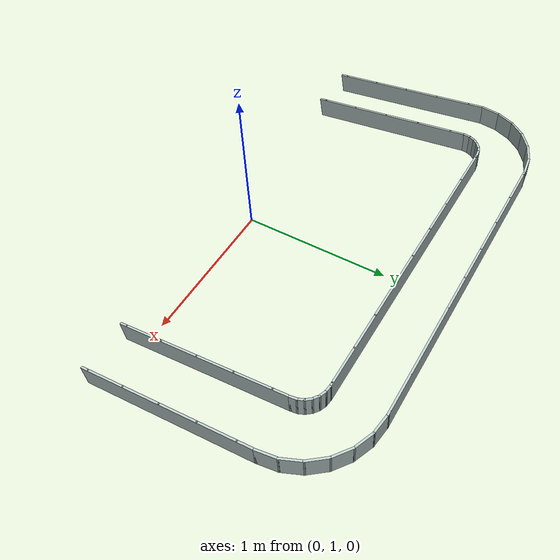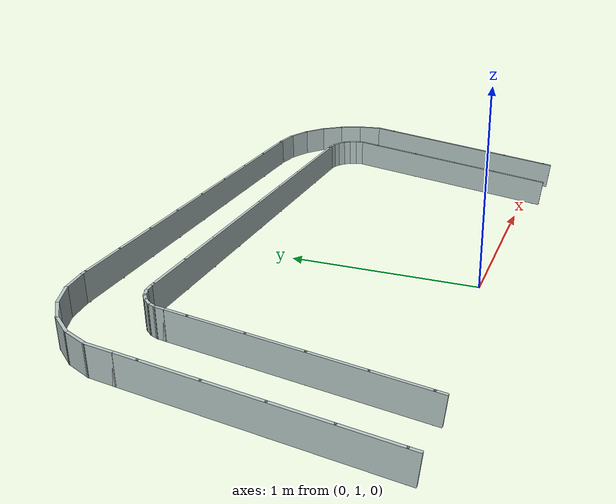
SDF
<sdf version="1.6">
 <world name="sandbox">
  <include><uri>model://sun</uri></include>
  <model name="upper_road_barriers">
   <static>true</static>
   <link name="body">
    <collision name="collision_1">
     <pose>-1.180000 1.452500 0.160960 0.000000 -0.115707 1.570796</pose>
     <geometry><box><size>1.157000 0.014000 0.145000</size></box></geometry>
    </collision>
    <visual name="visual_1">
     <pose>-1.180000 1.452500 0.160960 0.000000 -0.115707 1.570796</pose>
     <geometry><box><size>1.157000 0.014000 0.145000</size></box></geometry>
     <material><ambient>0.72 0.79 0.78 1</ambient><diffuse>0.72 0.79 0.78 1</diffuse></material>
    </visual>
    <visual name="visual_3">
     <pose>-1.180000 0.920000 0.098570 0.000000 0.000000 0.000000</pose>
     <geometry><cylinder><radius>0.005000</radius><length>0.150000</length></cylinder></geometry>
     <material><ambient>0.48 0.54 0.55 1</ambient><diffuse>0.48 0.54 0.55 1</diffuse></material>
    </visual>
    <visual name="visual_4">
     <pose>-1.180000 1.170000 0.127626 0.000000 0.000000 0.000000</pose>
     <geometry><cylinder><radius>0.005000</radius><length>0.150000</length></cylinder></geometry>
     <material><ambient>0.48 0.54 0.55 1</ambient><diffuse>0.48 0.54 0.55 1</diffuse></material>
    </visual>
    <visual name="visual_5">
     <pose>-1.180000 1.420000 0.156683 0.000000 0.000000 0.000000</pose>
     <geometry><cylinder><radius>0.005000</radius><length>0.150000</length></cylinder></geometry>
     <material><ambient>0.48 0.54 0.55 1</ambient><diffuse>0.48 0.54 0.55 1</diffuse></material>
    </visual>
    <visual name="visual_6">
     <pose>-1.180000 1.670000 0.185740 0.000000 0.000000 0.000000</pose>
     <geometry><cylinder><radius>0.005000</radius><length>0.150000</length></cylinder></geometry>
     <material><ambient>0.48 0.54 0.55 1</ambient><diffuse>0.48 0.54 0.55 1</diffuse></material>
    </visual>
    <visual name="visual_7">
     <pose>-1.180000 1.920000 0.214796 0.000000 0.000000 0.000000</pose>
     <geometry><cylinder><radius>0.005000</radius><length>0.150000</length></cylinder></geometry>
     <material><ambient>0.48 0.54 0.55 1</ambient><diffuse>0.48 0.54 0.55 1</diffuse></material>
    </visual>
    <collision name="collision_8">
     <pose>-1.520000 1.452500 0.160960 0.000000 -0.115707 1.570796</pose>
     <geometry><box><size>1.157000 0.014000 0.145000</size></box></geometry>
    </collision>
    <visual name="visual_8">
     <pose>-1.520000 1.452500 0.160960 0.000000 -0.115707 1.570796</pose>
     <geometry><box><size>1.157000 0.014000 0.145000</size></box></geometry>
     <material><ambient>0.72 0.79 0.78 1</ambient><diffuse>0.72 0.79 0.78 1</diffuse></material>
    </visual>
    <visual name="visual_10">
     <pose>-1.520000 0.920000 0.098570 0.000000 0.000000 0.000000</pose>
     <geometry><cylinder><radius>0.005000</radius><length>0.150000</length></cylinder></geometry>
     <material><ambient>0.48 0.54 0.55 1</ambient><diffuse>0.48 0.54 0.55 1</diffuse></material>
    </visual>
    <visual name="visual_11">
     <pose>-1.520000 1.170000 0.127626 0.000000 0.000000 0.000000</pose>
     <geometry><cylinder><radius>0.005000</radius><length>0.150000</length></cylinder></geometry>
     <material><ambient>0.48 0.54 0.55 1</ambient><diffuse>0.48 0.54 0.55 1</diffuse></material>
    </visual>
    <visual name="visual_12">
     <pose>-1.520000 1.420000 0.156683 0.000000 0.000000 0.000000</pose>
     <geometry><cylinder><radius>0.005000</radius><length>0.150000</length></cylinder></geometry>
     <material><ambient>0.48 0.54 0.55 1</ambient><diffuse>0.48 0.54 0.55 1</diffuse></material>
    </visual>
    <visual name="visual_13">
     <pose>-1.520000 1.670000 0.185740 0.000000 0.000000 0.000000</pose>
     <geometry><cylinder><radius>0.005000</radius><length>0.150000</length></cylinder></geometry>
     <material><ambient>0.48 0.54 0.55 1</ambient><diffuse>0.48 0.54 0.55 1</diffuse></material>
    </visual>
    <visual name="visual_14">
     <pose>-1.520000 1.920000 0.214796 0.000000 0.000000 0.000000</pose>
     <geometry><cylinder><radius>0.005000</radius><length>0.150000</length></cylinder></geometry>
     <material><ambient>0.48 0.54 0.55 1</ambient><diffuse>0.48 0.54 0.55 1</diffuse></material>
    </visual>
    <collision name="collision_15">
     <pose>1.180000 1.452500 0.160960 0.000000 -0.115707 1.570796</pose>
     <geometry><box><size>1.157000 0.014000 0.145000</size></box></geometry>
    </collision>
    <visual name="visual_15">
     <pose>1.180000 1.452500 0.160960 0.000000 -0.115707 1.570796</pose>
     <geometry><box><size>1.157000 0.014000 0.145000</size></box></geometry>
     <material><ambient>0.72 0.79 0.78 1</ambient><diffuse>0.72 0.79 0.78 1</diffuse></material>
    </visual>
    <visual name="visual_17">
     <pose>1.180000 0.920000 0.098570 0.000000 0.000000 0.000000</pose>
     <geometry><cylinder><radius>0.005000</radius><length>0.150000</length></cylinder></geometry>
     <material><ambient>0.48 0.54 0.55 1</ambient><diffuse>0.48 0.54 0.55 1</diffuse></material>
    </visual>
    <visual name="visual_18">
     <pose>1.180000 1.170000 0.127626 0.000000 0.000000 0.000000</pose>
     <geometry><cylinder><radius>0.005000</radius><length>0.150000</length></cylinder></geometry>
     <material><ambient>0.48 0.54 0.55 1</ambient><diffuse>0.48 0.54 0.55 1</diffuse></material>
    </visual>
    <visual name="visual_19">
     <pose>1.180000 1.420000 0.156683 0.000000 0.000000 0.000000</pose>
     <geometry><cylinder><radius>0.005000</radius><length>0.150000</length></cylinder></geometry>
     <material><ambient>0.48 0.54 0.55 1</ambient><diffuse>0.48 0.54 0.55 1</diffuse></material>
    </visual>
    <visual name="visual_20">
     <pose>1.180000 1.670000 0.185740 0.000000 0.000000 0.000000</pose>
     <geometry><cylinder><radius>0.005000</radius><length>0.150000</length></cylinder></geometry>
     <material><ambient>0.48 0.54 0.55 1</ambient><diffuse>0.48 0.54 0.55 1</diffuse></material>
    </visual>
    <visual name="visual_21">
     <pose>1.180000 1.920000 0.214796 0.000000 0.000000 0.000000</pose>
     <geometry><cylinder><radius>0.005000</radius><length>0.150000</length></cylinder></geometry>
     <material><ambient>0.48 0.54 0.55 1</ambient><diffuse>0.48 0.54 0.55 1</diffuse></material>
    </visual>
    <collision name="collision_22">
     <pose>1.520000 1.452500 0.160960 0.000000 -0.115707 1.570796</pose>
     <geometry><box><size>1.157000 0.014000 0.145000</size></box></geometry>
    </collision>
    <visual name="visual_22">
     <pose>1.520000 1.452500 0.160960 0.000000 -0.115707 1.570796</pose>
     <geometry><box><size>1.157000 0.014000 0.145000</size></box></geometry>
     <material><ambient>0.72 0.79 0.78 1</ambient><diffuse>0.72 0.79 0.78 1</diffuse></material>
    </visual>
    <visual name="visual_24">
     <pose>1.520000 0.920000 0.098570 0.000000 0.000000 0.000000</pose>
     <geometry><cylinder><radius>0.005000</radius><length>0.150000</length></cylinder></geometry>
     <material><ambient>0.48 0.54 0.55 1</ambient><diffuse>0.48 0.54 0.55 1</diffuse></material>
    </visual>
    <visual name="visual_25">
     <pose>1.520000 1.170000 0.127626 0.000000 0.000000 0.000000</pose>
     <geometry><cylinder><radius>0.005000</radius><length>0.150000</length></cylinder></geometry>
     <material><ambient>0.48 0.54 0.55 1</ambient><diffuse>0.48 0.54 0.55 1</diffuse></material>
    </visual>
    <visual name="visual_26">
     <pose>1.520000 1.420000 0.156683 0.000000 0.000000 0.000000</pose>
     <geometry><cylinder><radius>0.005000</radius><length>0.150000</length></cylinder></geometry>
     <material><ambient>0.48 0.54 0.55 1</ambient><diffuse>0.48 0.54 0.55 1</diffuse></material>
    </visual>
    <visual name="visual_27">
     <pose>1.520000 1.670000 0.185740 0.000000 0.000000 0.000000</pose>
     <geometry><cylinder><radius>0.005000</radius><length>0.150000</length></cylinder></geometry>
     <material><ambient>0.48 0.54 0.55 1</ambient><diffuse>0.48 0.54 0.55 1</diffuse></material>
    </visual>
    <visual name="visual_28">
     <pose>1.520000 1.920000 0.214796 0.000000 0.000000 0.000000</pose>
     <geometry><cylinder><radius>0.005000</radius><length>0.150000</length></cylinder></geometry>
     <material><ambient>0.48 0.54 0.55 1</ambient><diffuse>0.48 0.54 0.55 1</diffuse></material>
    </visual>
    <collision name="collision_29">
     <pose>1.177359 2.045058 0.227500 0.000000 -0.000000 1.701696</pose>
     <geometry><box><size>0.052463 0.014000 0.145000</size></box></geometry>
    </collision>
    <visual name="visual_29">
     <pose>1.177359 2.045058 0.227500 0.000000 -0.000000 1.701696</pose>
     <geometry><box><size>0.052463 0.014000 0.145000</size></box></geometry>
     <material><ambient>0.72 0.79 0.78 1</ambient><diffuse>0.72 0.79 0.78 1</diffuse></material>
    </visual>
    <collision name="collision_31">
     <pose>1.166976 2.083808 0.227500 0.000000 -0.000000 1.963495</pose>
     <geometry><box><size>0.052463 0.014000 0.145000</size></box></geometry>
    </collision>
    <visual name="visual_31">
     <pose>1.166976 2.083808 0.227500 0.000000 -0.000000 1.963495</pose>
     <geometry><box><size>0.052463 0.014000 0.145000</size></box></geometry>
     <material><ambient>0.72 0.79 0.78 1</ambient><diffuse>0.72 0.79 0.78 1</diffuse></material>
    </visual>
    <collision name="collision_33">
     <pose>1.146918 2.118551 0.227500 0.000000 -0.000000 2.225295</pose>
     <geometry><box><size>0.052463 0.014000 0.145000</size></box></geometry>
    </collision>
    <visual name="visual_33">
     <pose>1.146918 2.118551 0.227500 0.000000 -0.000000 2.225295</pose>
     <geometry><box><size>0.052463 0.014000 0.145000</size></box></geometry>
     <material><ambient>0.72 0.79 0.78 1</ambient><diffuse>0.72 0.79 0.78 1</diffuse></material>
    </visual>
    <collision name="collision_35">
     <pose>1.118551 2.146918 0.227500 0.000000 -0.000000 2.487094</pose>
     <geometry><box><size>0.052463 0.014000 0.145000</size></box></geometry>
    </collision>
    <visual name="visual_35">
     <pose>1.118551 2.146918 0.227500 0.000000 -0.000000 2.487094</pose>
     <geometry><box><size>0.052463 0.014000 0.145000</size></box></geometry>
     <material><ambient>0.72 0.79 0.78 1</ambient><diffuse>0.72 0.79 0.78 1</diffuse></material>
    </visual>
    <collision name="collision_37">
     <pose>1.083808 2.166976 0.227500 0.000000 -0.000000 2.748894</pose>
     <geometry><box><size>0.052463 0.014000 0.145000</size></box></geometry>
    </collision>
    <visual name="visual_37">
     <pose>1.083808 2.166976 0.227500 0.000000 -0.000000 2.748894</pose>
     <geometry><box><size>0.052463 0.014000 0.145000</size></box></geometry>
     <material><ambient>0.72 0.79 0.78 1</ambient><diffuse>0.72 0.79 0.78 1</diffuse></material>
    </visual>
    <collision name="collision_39">
     <pose>1.045058 2.177359 0.227500 0.000000 -0.000000 3.010693</pose>
     <geometry><box><size>0.052463 0.014000 0.145000</size></box></geometry>
    </collision>
    <visual name="visual_39">
     <pose>1.045058 2.177359 0.227500 0.000000 -0.000000 3.010693</pose>
     <geometry><box><size>0.052463 0.014000 0.145000</size></box></geometry>
     <material><ambient>0.72 0.79 0.78 1</ambient><diffuse>0.72 0.79 0.78 1</diffuse></material>
    </visual>
    <collision name="collision_41">
     <pose>1.511567 2.089058 0.227500 0.000000 -0.000000 1.701696</pose>
     <geometry><box><size>0.141221 0.014000 0.145000</size></box></geometry>
    </collision>
    <visual name="visual_41">
     <pose>1.511567 2.089058 0.227500 0.000000 -0.000000 1.701696</pose>
     <geometry><box><size>0.141221 0.014000 0.145000</size></box></geometry>
     <material><ambient>0.72 0.79 0.78 1</ambient><diffuse>0.72 0.79 0.78 1</diffuse></material>
    </visual>
    <collision name="collision_43">
     <pose>1.478408 2.212808 0.227500 0.000000 -0.000000 1.963495</pose>
     <geometry><box><size>0.141221 0.014000 0.145000</size></box></geometry>
    </collision>
    <visual name="visual_43">
     <pose>1.478408 2.212808 0.227500 0.000000 -0.000000 1.963495</pose>
     <geometry><box><size>0.141221 0.014000 0.145000</size></box></geometry>
     <material><ambient>0.72 0.79 0.78 1</ambient><diffuse>0.72 0.79 0.78 1</diffuse></material>
    </visual>
    <collision name="collision_45">
     <pose>1.414350 2.323759 0.227500 0.000000 -0.000000 2.225295</pose>
     <geometry><box><size>0.141221 0.014000 0.145000</size></box></geometry>
    </collision>
    <visual name="visual_45">
     <pose>1.414350 2.323759 0.227500 0.000000 -0.000000 2.225295</pose>
     <geometry><box><size>0.141221 0.014000 0.145000</size></box></geometry>
     <material><ambient>0.72 0.79 0.78 1</ambient><diffuse>0.72 0.79 0.78 1</diffuse></material>
    </visual>
    <collision name="collision_47">
     <pose>1.323759 2.414350 0.227500 0.000000 -0.000000 2.487094</pose>
     <geometry><box><size>0.141221 0.014000 0.145000</size></box></geometry>
    </collision>
    <visual name="visual_47">
     <pose>1.323759 2.414350 0.227500 0.000000 -0.000000 2.487094</pose>
     <geometry><box><size>0.141221 0.014000 0.145000</size></box></geometry>
     <material><ambient>0.72 0.79 0.78 1</ambient><diffuse>0.72 0.79 0.78 1</diffuse></material>
    </visual>
    <collision name="collision_49">
     <pose>1.212808 2.478408 0.227500 0.000000 -0.000000 2.748894</pose>
     <geometry><box><size>0.141221 0.014000 0.145000</size></box></geometry>
    </collision>
    <visual name="visual_49">
     <pose>1.212808 2.478408 0.227500 0.000000 -0.000000 2.748894</pose>
     <geometry><box><size>0.141221 0.014000 0.145000</size></box></geometry>
     <material><ambient>0.72 0.79 0.78 1</ambient><diffuse>0.72 0.79 0.78 1</diffuse></material>
    </visual>
    <collision name="collision_51">
     <pose>1.089058 2.511567 0.227500 0.000000 -0.000000 3.010693</pose>
     <geometry><box><size>0.141221 0.014000 0.145000</size></box></geometry>
    </collision>
    <visual name="visual_51">
     <pose>1.089058 2.511567 0.227500 0.000000 -0.000000 3.010693</pose>
     <geometry><box><size>0.141221 0.014000 0.145000</size></box></geometry>
     <material><ambient>0.72 0.79 0.78 1</ambient><diffuse>0.72 0.79 0.78 1</diffuse></material>
    </visual>
    <collision name="collision_53">
     <pose>-1.045058 2.177359 0.227500 0.000000 -0.000000 -3.010693</pose>
     <geometry><box><size>0.052463 0.014000 0.145000</size></box></geometry>
    </collision>
    <visual name="visual_53">
     <pose>-1.045058 2.177359 0.227500 0.000000 -0.000000 -3.010693</pose>
     <geometry><box><size>0.052463 0.014000 0.145000</size></box></geometry>
     <material><ambient>0.72 0.79 0.78 1</ambient><diffuse>0.72 0.79 0.78 1</diffuse></material>
    </visual>
    <collision name="collision_55">
     <pose>-1.083808 2.166976 0.227500 0.000000 -0.000000 -2.748894</pose>
     <geometry><box><size>0.052463 0.014000 0.145000</size></box></geometry>
    </collision>
    <visual name="visual_55">
     <pose>-1.083808 2.166976 0.227500 0.000000 -0.000000 -2.748894</pose>
     <geometry><box><size>0.052463 0.014000 0.145000</size></box></geometry>
     <material><ambient>0.72 0.79 0.78 1</ambient><diffuse>0.72 0.79 0.78 1</diffuse></material>
    </visual>
    <collision name="collision_57">
     <pose>-1.118551 2.146918 0.227500 0.000000 -0.000000 -2.487094</pose>
     <geometry><box><size>0.052463 0.014000 0.145000</size></box></geometry>
    </collision>
    <visual name="visual_57">
     <pose>-1.118551 2.146918 0.227500 0.000000 -0.000000 -2.487094</pose>
     <geometry><box><size>0.052463 0.014000 0.145000</size></box></geometry>
     <material><ambient>0.72 0.79 0.78 1</ambient><diffuse>0.72 0.79 0.78 1</diffuse></material>
    </visual>
    <collision name="collision_59">
     <pose>-1.146918 2.118551 0.227500 0.000000 -0.000000 -2.225295</pose>
     <geometry><box><size>0.052463 0.014000 0.145000</size></box></geometry>
    </collision>
    <visual name="visual_59">
     <pose>-1.146918 2.118551 0.227500 0.000000 -0.000000 -2.225295</pose>
     <geometry><box><size>0.052463 0.014000 0.145000</size></box></geometry>
     <material><ambient>0.72 0.79 0.78 1</ambient><diffuse>0.72 0.79 0.78 1</diffuse></material>
    </visual>
    <collision name="collision_61">
     <pose>-1.166976 2.083808 0.227500 0.000000 -0.000000 -1.963495</pose>
     <geometry><box><size>0.052463 0.014000 0.145000</size></box></geometry>
    </collision>
    <visual name="visual_61">
     <pose>-1.166976 2.083808 0.227500 0.000000 -0.000000 -1.963495</pose>
     <geometry><box><size>0.052463 0.014000 0.145000</size></box></geometry>
     <material><ambient>0.72 0.79 0.78 1</ambient><diffuse>0.72 0.79 0.78 1</diffuse></material>
    </visual>
    <collision name="collision_63">
     <pose>-1.177359 2.045058 0.227500 0.000000 -0.000000 -1.701696</pose>
     <geometry><box><size>0.052463 0.014000 0.145000</size></box></geometry>
    </collision>
    <visual name="visual_63">
     <pose>-1.177359 2.045058 0.227500 0.000000 -0.000000 -1.701696</pose>
     <geometry><box><size>0.052463 0.014000 0.145000</size></box></geometry>
     <material><ambient>0.72 0.79 0.78 1</ambient><diffuse>0.72 0.79 0.78 1</diffuse></material>
    </visual>
    <collision name="collision_65">
     <pose>-1.089058 2.511567 0.227500 0.000000 -0.000000 -3.010693</pose>
     <geometry><box><size>0.141221 0.014000 0.145000</size></box></geometry>
    </collision>
    <visual name="visual_65">
     <pose>-1.089058 2.511567 0.227500 0.000000 -0.000000 -3.010693</pose>
     <geometry><box><size>0.141221 0.014000 0.145000</size></box></geometry>
     <material><ambient>0.72 0.79 0.78 1</ambient><diffuse>0.72 0.79 0.78 1</diffuse></material>
    </visual>
    <collision name="collision_67">
     <pose>-1.212808 2.478408 0.227500 0.000000 -0.000000 -2.748894</pose>
     <geometry><box><size>0.141221 0.014000 0.145000</size></box></geometry>
    </collision>
    <visual name="visual_67">
     <pose>-1.212808 2.478408 0.227500 0.000000 -0.000000 -2.748894</pose>
     <geometry><box><size>0.141221 0.014000 0.145000</size></box></geometry>
     <material><ambient>0.72 0.79 0.78 1</ambient><diffuse>0.72 0.79 0.78 1</diffuse></material>
    </visual>
    <collision name="collision_69">
     <pose>-1.323759 2.414350 0.227500 0.000000 -0.000000 -2.487094</pose>
     <geometry><box><size>0.141221 0.014000 0.145000</size></box></geometry>
    </collision>
    <visual name="visual_69">
     <pose>-1.323759 2.414350 0.227500 0.000000 -0.000000 -2.487094</pose>
     <geometry><box><size>0.141221 0.014000 0.145000</size></box></geometry>
     <material><ambient>0.72 0.79 0.78 1</ambient><diffuse>0.72 0.79 0.78 1</diffuse></material>
    </visual>
    <collision name="collision_71">
     <pose>-1.414350 2.323759 0.227500 0.000000 -0.000000 -2.225295</pose>
     <geometry><box><size>0.141221 0.014000 0.145000</size></box></geometry>
    </collision>
    <visual name="visual_71">
     <pose>-1.414350 2.323759 0.227500 0.000000 -0.000000 -2.225295</pose>
     <geometry><box><size>0.141221 0.014000 0.145000</size></box></geometry>
     <material><ambient>0.72 0.79 0.78 1</ambient><diffuse>0.72 0.79 0.78 1</diffuse></material>
    </visual>
    <collision name="collision_73">
     <pose>-1.478408 2.212808 0.227500 0.000000 -0.000000 -1.963495</pose>
     <geometry><box><size>0.141221 0.014000 0.145000</size></box></geometry>
    </collision>
    <visual name="visual_73">
     <pose>-1.478408 2.212808 0.227500 0.000000 -0.000000 -1.963495</pose>
     <geometry><box><size>0.141221 0.014000 0.145000</size></box></geometry>
     <material><ambient>0.72 0.79 0.78 1</ambient><diffuse>0.72 0.79 0.78 1</diffuse></material>
    </visual>
    <collision name="collision_75">
     <pose>-1.511567 2.089058 0.227500 0.000000 -0.000000 -1.701696</pose>
     <geometry><box><size>0.141221 0.014000 0.145000</size></box></geometry>
    </collision>
    <visual name="visual_75">
     <pose>-1.511567 2.089058 0.227500 0.000000 -0.000000 -1.701696</pose>
     <geometry><box><size>0.141221 0.014000 0.145000</size></box></geometry>
     <material><ambient>0.72 0.79 0.78 1</ambient><diffuse>0.72 0.79 0.78 1</diffuse></material>
    </visual>
    <collision name="collision_77">
     <pose>0.000000 2.180000 0.227500 0.000000 -0.000000 0.000000</pose>
     <geometry><box><size>2.062000 0.014000 0.145000</size></box></geometry>
    </collision>
    <visual name="visual_77">
     <pose>0.000000 2.180000 0.227500 0.000000 -0.000000 0.000000</pose>
     <geometry><box><size>2.062000 0.014000 0.145000</size></box></geometry>
     <material><ambient>0.72 0.79 0.78 1</ambient><diffuse>0.72 0.79 0.78 1</diffuse></material>
    </visual>
    <visual name="visual_79">
     <pose>-1.000000 2.180000 0.225000 0.000000 0.000000 0.000000</pose>
     <geometry><cylinder><radius>0.005000</radius><length>0.150000</length></cylinder></geometry>
     <material><ambient>0.48 0.54 0.55 1</ambient><diffuse>0.48 0.54 0.55 1</diffuse></material>
    </visual>
    <visual name="visual_80">
     <pose>-0.750000 2.180000 0.225000 0.000000 0.000000 0.000000</pose>
     <geometry><cylinder><radius>0.005000</radius><length>0.150000</length></cylinder></geometry>
     <material><ambient>0.48 0.54 0.55 1</ambient><diffuse>0.48 0.54 0.55 1</diffuse></material>
    </visual>
    <visual name="visual_81">
     <pose>-0.500000 2.180000 0.225000 0.000000 0.000000 0.000000</pose>
     <geometry><cylinder><radius>0.005000</radius><length>0.150000</length></cylinder></geometry>
     <material><ambient>0.48 0.54 0.55 1</ambient><diffuse>0.48 0.54 0.55 1</diffuse></material>
    </visual>
    <visual name="visual_82">
     <pose>-0.250000 2.180000 0.225000 0.000000 0.000000 0.000000</pose>
     <geometry><cylinder><radius>0.005000</radius><length>0.150000</length></cylinder></geometry>
     <material><ambient>0.48 0.54 0.55 1</ambient><diffuse>0.48 0.54 0.55 1</diffuse></material>
    </visual>
    <visual name="visual_83">
     <pose>0.000000 2.180000 0.225000 0.000000 0.000000 0.000000</pose>
     <geometry><cylinder><radius>0.005000</radius><length>0.150000</length></cylinder></geometry>
     <material><ambient>0.48 0.54 0.55 1</ambient><diffuse>0.48 0.54 0.55 1</diffuse></material>
    </visual>
    <visual name="visual_84">
     <pose>0.250000 2.180000 0.225000 0.000000 0.000000 0.000000</pose>
     <geometry><cylinder><radius>0.005000</radius><length>0.150000</length></cylinder></geometry>
     <material><ambient>0.48 0.54 0.55 1</ambient><diffuse>0.48 0.54 0.55 1</diffuse></material>
    </visual>
    <visual name="visual_85">
     <pose>0.500000 2.180000 0.225000 0.000000 0.000000 0.000000</pose>
     <geometry><cylinder><radius>0.005000</radius><length>0.150000</length></cylinder></geometry>
     <material><ambient>0.48 0.54 0.55 1</ambient><diffuse>0.48 0.54 0.55 1</diffuse></material>
    </visual>
    <visual name="visual_86">
     <pose>0.750000 2.180000 0.225000 0.000000 0.000000 0.000000</pose>
     <geometry><cylinder><radius>0.005000</radius><length>0.150000</length></cylinder></geometry>
     <material><ambient>0.48 0.54 0.55 1</ambient><diffuse>0.48 0.54 0.55 1</diffuse></material>
    </visual>
    <visual name="visual_87">
     <pose>1.000000 2.180000 0.225000 0.000000 0.000000 0.000000</pose>
     <geometry><cylinder><radius>0.005000</radius><length>0.150000</length></cylinder></geometry>
     <material><ambient>0.48 0.54 0.55 1</ambient><diffuse>0.48 0.54 0.55 1</diffuse></material>
    </visual>
    <collision name="collision_88">
     <pose>0.000000 2.520000 0.227500 0.000000 -0.000000 0.000000</pose>
     <geometry><box><size>2.062000 0.014000 0.145000</size></box></geometry>
    </collision>
    <visual name="visual_88">
     <pose>0.000000 2.520000 0.227500 0.000000 -0.000000 0.000000</pose>
     <geometry><box><size>2.062000 0.014000 0.145000</size></box></geometry>
     <material><ambient>0.72 0.79 0.78 1</ambient><diffuse>0.72 0.79 0.78 1</diffuse></material>
    </visual>
    <visual name="visual_90">
     <pose>-1.000000 2.520000 0.225000 0.000000 0.000000 0.000000</pose>
     <geometry><cylinder><radius>0.005000</radius><length>0.150000</length></cylinder></geometry>
     <material><ambient>0.48 0.54 0.55 1</ambient><diffuse>0.48 0.54 0.55 1</diffuse></material>
    </visual>
    <visual name="visual_91">
     <pose>-0.750000 2.520000 0.225000 0.000000 0.000000 0.000000</pose>
     <geometry><cylinder><radius>0.005000</radius><length>0.150000</length></cylinder></geometry>
     <material><ambient>0.48 0.54 0.55 1</ambient><diffuse>0.48 0.54 0.55 1</diffuse></material>
    </visual>
    <visual name="visual_92">
     <pose>-0.500000 2.520000 0.225000 0.000000 0.000000 0.000000</pose>
     <geometry><cylinder><radius>0.005000</radius><length>0.150000</length></cylinder></geometry>
     <material><ambient>0.48 0.54 0.55 1</ambient><diffuse>0.48 0.54 0.55 1</diffuse></material>
    </visual>
    <visual name="visual_93">
     <pose>-0.250000 2.520000 0.225000 0.000000 0.000000 0.000000</pose>
     <geometry><cylinder><radius>0.005000</radius><length>0.150000</length></cylinder></geometry>
     <material><ambient>0.48 0.54 0.55 1</ambient><diffuse>0.48 0.54 0.55 1</diffuse></material>
    </visual>
    <visual name="visual_94">
     <pose>0.000000 2.520000 0.225000 0.000000 0.000000 0.000000</pose>
     <geometry><cylinder><radius>0.005000</radius><length>0.150000</length></cylinder></geometry>
     <material><ambient>0.48 0.54 0.55 1</ambient><diffuse>0.48 0.54 0.55 1</diffuse></material>
    </visual>
    <visual name="visual_95">
     <pose>0.250000 2.520000 0.225000 0.000000 0.000000 0.000000</pose>
     <geometry><cylinder><radius>0.005000</radius><length>0.150000</length></cylinder></geometry>
     <material><ambient>0.48 0.54 0.55 1</ambient><diffuse>0.48 0.54 0.55 1</diffuse></material>
    </visual>
    <visual name="visual_96">
     <pose>0.500000 2.520000 0.225000 0.000000 0.000000 0.000000</pose>
     <geometry><cylinder><radius>0.005000</radius><length>0.150000</length></cylinder></geometry>
     <material><ambient>0.48 0.54 0.55 1</ambient><diffuse>0.48 0.54 0.55 1</diffuse></material>
    </visual>
    <visual name="visual_97">
     <pose>0.750000 2.520000 0.225000 0.000000 0.000000 0.000000</pose>
     <geometry><cylinder><radius>0.005000</radius><length>0.150000</length></cylinder></geometry>
     <material><ambient>0.48 0.54 0.55 1</ambient><diffuse>0.48 0.54 0.55 1</diffuse></material>
    </visual>
    <visual name="visual_98">
     <pose>1.000000 2.520000 0.225000 0.000000 0.000000 0.000000</pose>
     <geometry><cylinder><radius>0.005000</radius><length>0.150000</length></cylinder></geometry>
     <material><ambient>0.48 0.54 0.55 1</ambient><diffuse>0.48 0.54 0.55 1</diffuse></material>
    </visual>
   </link>
  </model>
 </world>
</sdf>
